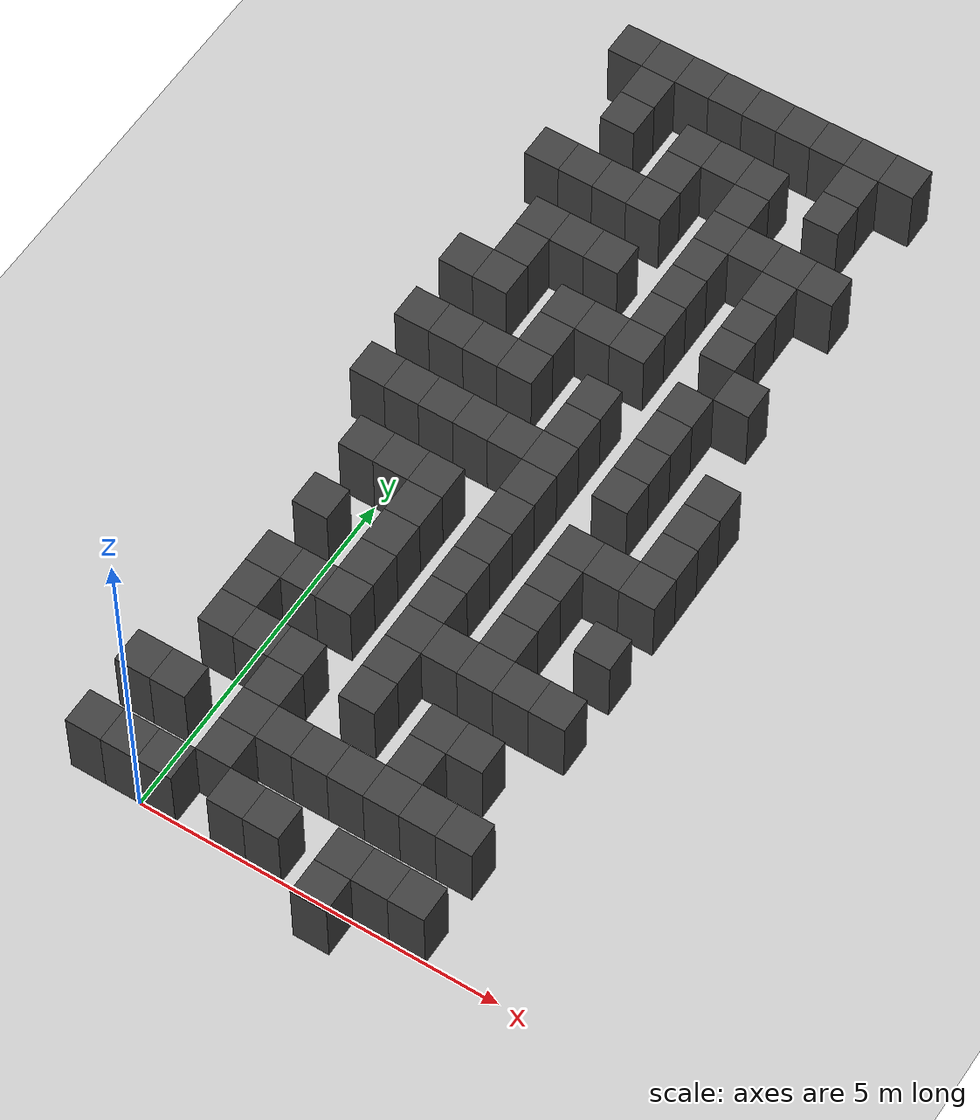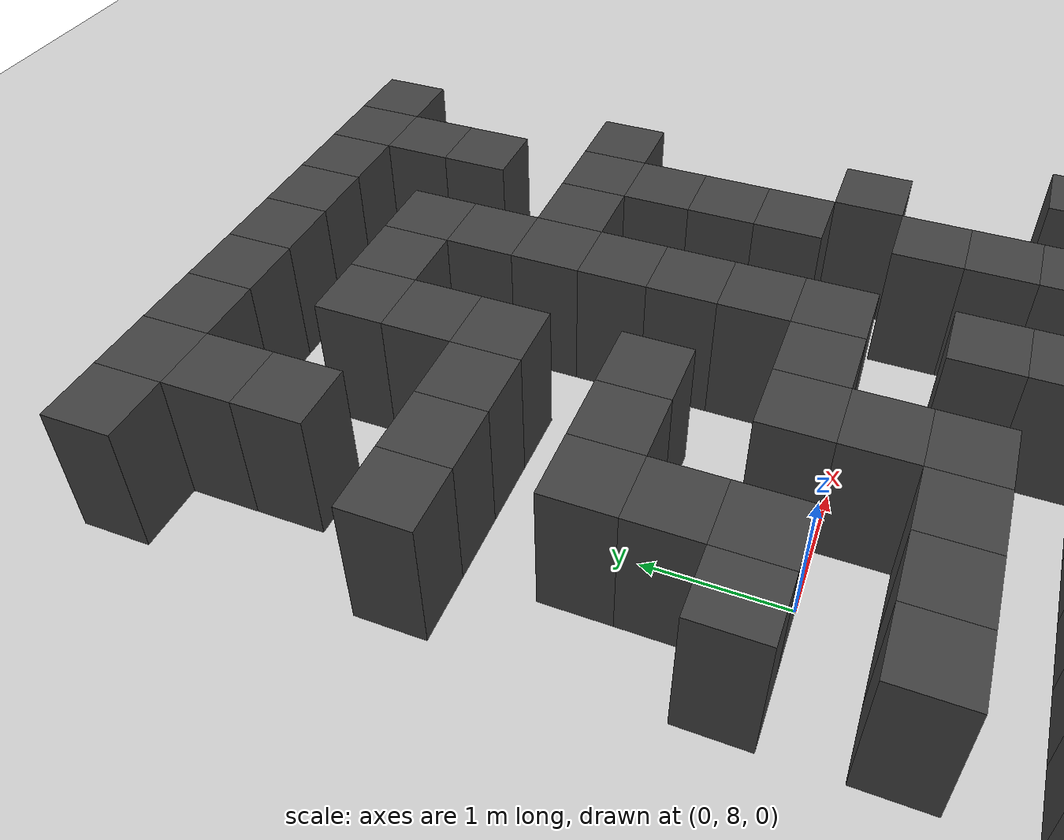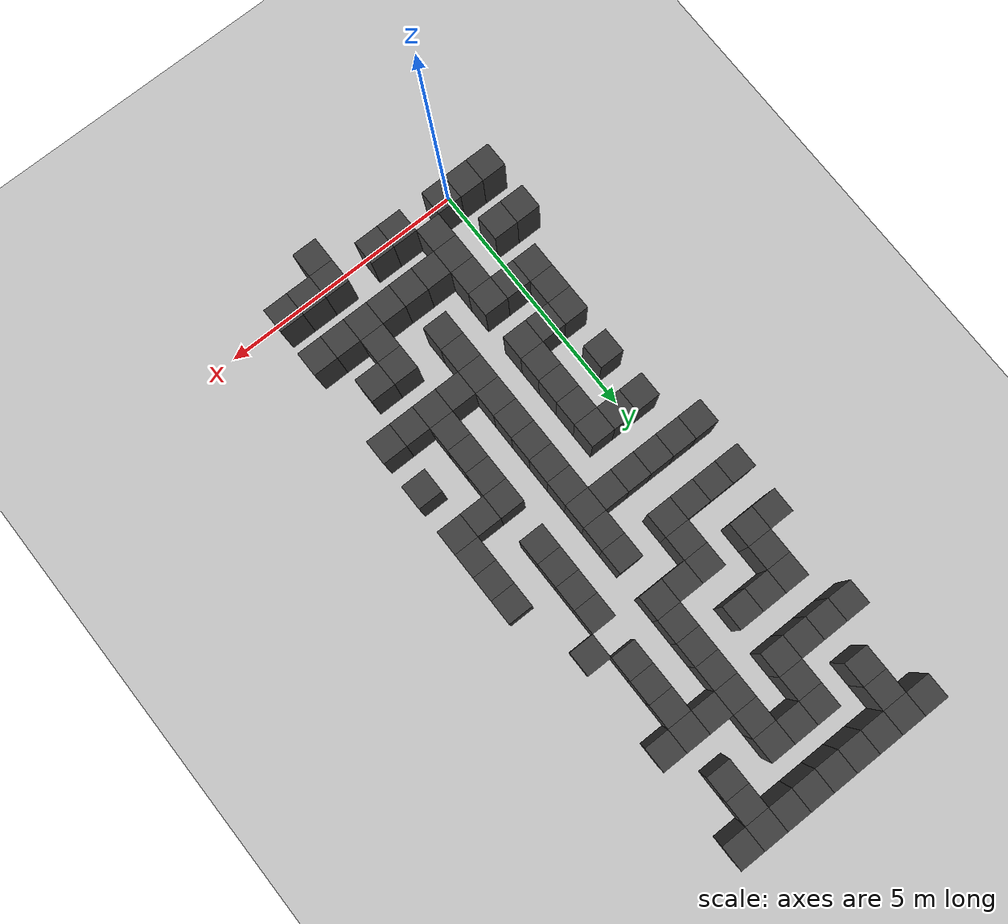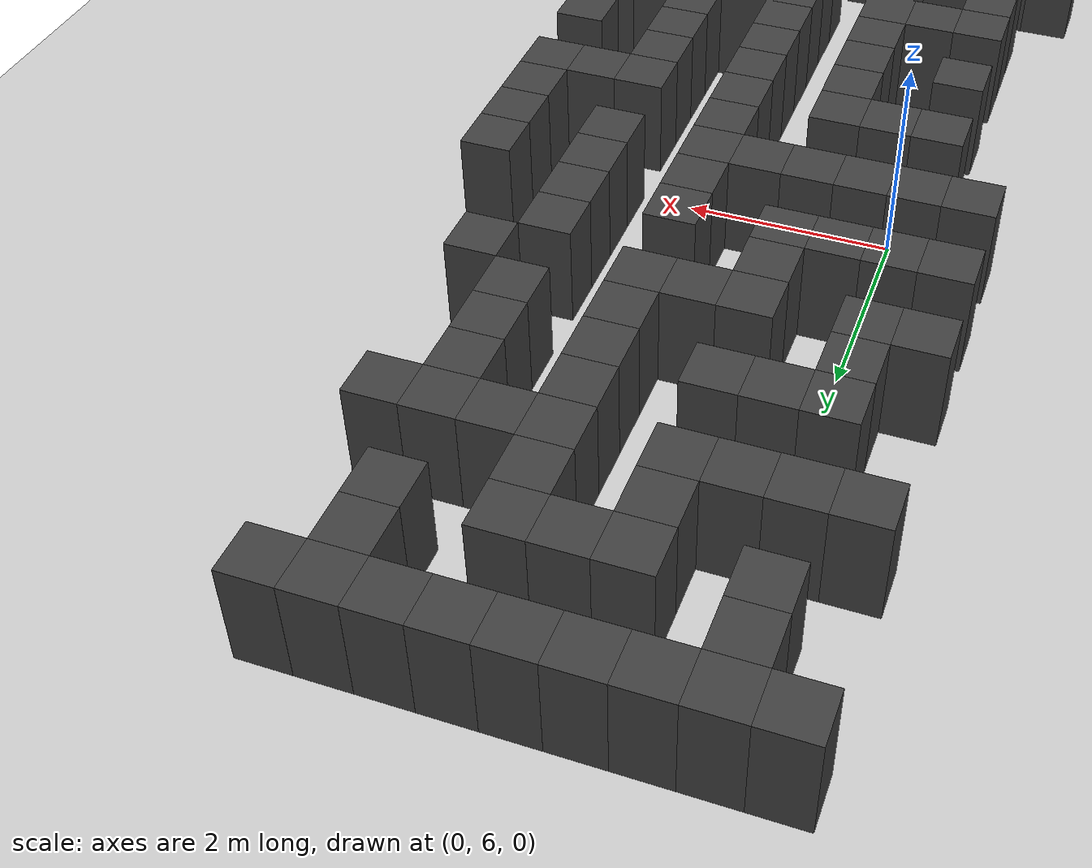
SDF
<sdf version="1.7">
 <world name="map_18313">
  <model name="ground_plane">
   <static>true</static>
   <link name="link">
    <collision name="collision">
     <geometry><plane><normal>0 0 1</normal><size>200 200</size></plane></geometry>
    </collision>
    <visual name="visual">
     <geometry><plane><normal>0 0 1</normal><size>200 200</size></plane></geometry>
     <material><ambient>0.8 0.8 0.8 1</ambient><diffuse>0.8 0.8 0.8 1</diffuse></material>
    </visual>
   </link>
  </model>
  <model name="maze_environment">
   <static>true</static>
   <link name="wall_23">
    <pose>-0.750 12.250 0.500 0 0 0</pose>
    <collision name="col"><geometry><box><size>0.5 0.5 1.0</size></box></geometry></collision>
    <visual name="vis">
     <geometry><box><size>0.5 0.5 1.0</size></box></geometry>
     <material><ambient>0.15 0.15 0.15 1</ambient><diffuse>0.25 0.25 0.25 1</diffuse></material>
    </visual>
   </link>
   <link name="wall_24">
    <pose>-0.250 12.250 0.500 0 0 0</pose>
    <collision name="col"><geometry><box><size>0.5 0.5 1.0</size></box></geometry></collision>
    <visual name="vis">
     <geometry><box><size>0.5 0.5 1.0</size></box></geometry>
     <material><ambient>0.15 0.15 0.15 1</ambient><diffuse>0.25 0.25 0.25 1</diffuse></material>
    </visual>
   </link>
   <link name="wall_25">
    <pose>0.250 12.250 0.500 0 0 0</pose>
    <collision name="col"><geometry><box><size>0.5 0.5 1.0</size></box></geometry></collision>
    <visual name="vis">
     <geometry><box><size>0.5 0.5 1.0</size></box></geometry>
     <material><ambient>0.15 0.15 0.15 1</ambient><diffuse>0.25 0.25 0.25 1</diffuse></material>
    </visual>
   </link>
   <link name="wall_26">
    <pose>0.750 12.250 0.500 0 0 0</pose>
    <collision name="col"><geometry><box><size>0.5 0.5 1.0</size></box></geometry></collision>
    <visual name="vis">
     <geometry><box><size>0.5 0.5 1.0</size></box></geometry>
     <material><ambient>0.15 0.15 0.15 1</ambient><diffuse>0.25 0.25 0.25 1</diffuse></material>
    </visual>
   </link>
   <link name="wall_27">
    <pose>1.250 12.250 0.500 0 0 0</pose>
    <collision name="col"><geometry><box><size>0.5 0.5 1.0</size></box></geometry></collision>
    <visual name="vis">
     <geometry><box><size>0.5 0.5 1.0</size></box></geometry>
     <material><ambient>0.15 0.15 0.15 1</ambient><diffuse>0.25 0.25 0.25 1</diffuse></material>
    </visual>
   </link>
   <link name="wall_28">
    <pose>1.750 12.250 0.500 0 0 0</pose>
    <collision name="col"><geometry><box><size>0.5 0.5 1.0</size></box></geometry></collision>
    <visual name="vis">
     <geometry><box><size>0.5 0.5 1.0</size></box></geometry>
     <material><ambient>0.15 0.15 0.15 1</ambient><diffuse>0.25 0.25 0.25 1</diffuse></material>
    </visual>
   </link>
   <link name="wall_29">
    <pose>2.250 12.250 0.500 0 0 0</pose>
    <collision name="col"><geometry><box><size>0.5 0.5 1.0</size></box></geometry></collision>
    <visual name="vis">
     <geometry><box><size>0.5 0.5 1.0</size></box></geometry>
     <material><ambient>0.15 0.15 0.15 1</ambient><diffuse>0.25 0.25 0.25 1</diffuse></material>
    </visual>
   </link>
   <link name="wall_30">
    <pose>2.750 12.250 0.500 0 0 0</pose>
    <collision name="col"><geometry><box><size>0.5 0.5 1.0</size></box></geometry></collision>
    <visual name="vis">
     <geometry><box><size>0.5 0.5 1.0</size></box></geometry>
     <material><ambient>0.15 0.15 0.15 1</ambient><diffuse>0.25 0.25 0.25 1</diffuse></material>
    </visual>
   </link>
   <link name="wall_31">
    <pose>3.250 12.250 0.500 0 0 0</pose>
    <collision name="col"><geometry><box><size>0.5 0.5 1.0</size></box></geometry></collision>
    <visual name="vis">
     <geometry><box><size>0.5 0.5 1.0</size></box></geometry>
     <material><ambient>0.15 0.15 0.15 1</ambient><diffuse>0.25 0.25 0.25 1</diffuse></material>
    </visual>
   </link>
   <link name="wall_54">
    <pose>-0.250 11.750 0.500 0 0 0</pose>
    <collision name="col"><geometry><box><size>0.5 0.5 1.0</size></box></geometry></collision>
    <visual name="vis">
     <geometry><box><size>0.5 0.5 1.0</size></box></geometry>
     <material><ambient>0.15 0.15 0.15 1</ambient><diffuse>0.25 0.25 0.25 1</diffuse></material>
    </visual>
   </link>
   <link name="wall_55">
    <pose>2.750 11.750 0.500 0 0 0</pose>
    <collision name="col"><geometry><box><size>0.5 0.5 1.0</size></box></geometry></collision>
    <visual name="vis">
     <geometry><box><size>0.5 0.5 1.0</size></box></geometry>
     <material><ambient>0.15 0.15 0.15 1</ambient><diffuse>0.25 0.25 0.25 1</diffuse></material>
    </visual>
   </link>
   <link name="wall_76">
    <pose>-0.250 11.250 0.500 0 0 0</pose>
    <collision name="col"><geometry><box><size>0.5 0.5 1.0</size></box></geometry></collision>
    <visual name="vis">
     <geometry><box><size>0.5 0.5 1.0</size></box></geometry>
     <material><ambient>0.15 0.15 0.15 1</ambient><diffuse>0.25 0.25 0.25 1</diffuse></material>
    </visual>
   </link>
   <link name="wall_77">
    <pose>0.750 11.250 0.500 0 0 0</pose>
    <collision name="col"><geometry><box><size>0.5 0.5 1.0</size></box></geometry></collision>
    <visual name="vis">
     <geometry><box><size>0.5 0.5 1.0</size></box></geometry>
     <material><ambient>0.15 0.15 0.15 1</ambient><diffuse>0.25 0.25 0.25 1</diffuse></material>
    </visual>
   </link>
   <link name="wall_78">
    <pose>1.250 11.250 0.500 0 0 0</pose>
    <collision name="col"><geometry><box><size>0.5 0.5 1.0</size></box></geometry></collision>
    <visual name="vis">
     <geometry><box><size>0.5 0.5 1.0</size></box></geometry>
     <material><ambient>0.15 0.15 0.15 1</ambient><diffuse>0.25 0.25 0.25 1</diffuse></material>
    </visual>
   </link>
   <link name="wall_79">
    <pose>1.750 11.250 0.500 0 0 0</pose>
    <collision name="col"><geometry><box><size>0.5 0.5 1.0</size></box></geometry></collision>
    <visual name="vis">
     <geometry><box><size>0.5 0.5 1.0</size></box></geometry>
     <material><ambient>0.15 0.15 0.15 1</ambient><diffuse>0.25 0.25 0.25 1</diffuse></material>
    </visual>
   </link>
   <link name="wall_80">
    <pose>2.750 11.250 0.500 0 0 0</pose>
    <collision name="col"><geometry><box><size>0.5 0.5 1.0</size></box></geometry></collision>
    <visual name="vis">
     <geometry><box><size>0.5 0.5 1.0</size></box></geometry>
     <material><ambient>0.15 0.15 0.15 1</ambient><diffuse>0.25 0.25 0.25 1</diffuse></material>
    </visual>
   </link>
   <link name="wall_100">
    <pose>0.750 10.750 0.500 0 0 0</pose>
    <collision name="col"><geometry><box><size>0.5 0.5 1.0</size></box></geometry></collision>
    <visual name="vis">
     <geometry><box><size>0.5 0.5 1.0</size></box></geometry>
     <material><ambient>0.15 0.15 0.15 1</ambient><diffuse>0.25 0.25 0.25 1</diffuse></material>
    </visual>
   </link>
   <link name="wall_101">
    <pose>1.750 10.750 0.500 0 0 0</pose>
    <collision name="col"><geometry><box><size>0.5 0.5 1.0</size></box></geometry></collision>
    <visual name="vis">
     <geometry><box><size>0.5 0.5 1.0</size></box></geometry>
     <material><ambient>0.15 0.15 0.15 1</ambient><diffuse>0.25 0.25 0.25 1</diffuse></material>
    </visual>
   </link>
   <link name="wall_124">
    <pose>-0.750 10.250 0.500 0 0 0</pose>
    <collision name="col"><geometry><box><size>0.5 0.5 1.0</size></box></geometry></collision>
    <visual name="vis">
     <geometry><box><size>0.5 0.5 1.0</size></box></geometry>
     <material><ambient>0.15 0.15 0.15 1</ambient><diffuse>0.25 0.25 0.25 1</diffuse></material>
    </visual>
   </link>
   <link name="wall_125">
    <pose>-0.250 10.250 0.500 0 0 0</pose>
    <collision name="col"><geometry><box><size>0.5 0.5 1.0</size></box></geometry></collision>
    <visual name="vis">
     <geometry><box><size>0.5 0.5 1.0</size></box></geometry>
     <material><ambient>0.15 0.15 0.15 1</ambient><diffuse>0.25 0.25 0.25 1</diffuse></material>
    </visual>
   </link>
   <link name="wall_126">
    <pose>0.250 10.250 0.500 0 0 0</pose>
    <collision name="col"><geometry><box><size>0.5 0.5 1.0</size></box></geometry></collision>
    <visual name="vis">
     <geometry><box><size>0.5 0.5 1.0</size></box></geometry>
     <material><ambient>0.15 0.15 0.15 1</ambient><diffuse>0.25 0.25 0.25 1</diffuse></material>
    </visual>
   </link>
   <link name="wall_127">
    <pose>0.750 10.250 0.500 0 0 0</pose>
    <collision name="col"><geometry><box><size>0.5 0.5 1.0</size></box></geometry></collision>
    <visual name="vis">
     <geometry><box><size>0.5 0.5 1.0</size></box></geometry>
     <material><ambient>0.15 0.15 0.15 1</ambient><diffuse>0.25 0.25 0.25 1</diffuse></material>
    </visual>
   </link>
   <link name="wall_128">
    <pose>1.750 10.250 0.500 0 0 0</pose>
    <collision name="col"><geometry><box><size>0.5 0.5 1.0</size></box></geometry></collision>
    <visual name="vis">
     <geometry><box><size>0.5 0.5 1.0</size></box></geometry>
     <material><ambient>0.15 0.15 0.15 1</ambient><diffuse>0.25 0.25 0.25 1</diffuse></material>
    </visual>
   </link>
   <link name="wall_129">
    <pose>2.250 10.250 0.500 0 0 0</pose>
    <collision name="col"><geometry><box><size>0.5 0.5 1.0</size></box></geometry></collision>
    <visual name="vis">
     <geometry><box><size>0.5 0.5 1.0</size></box></geometry>
     <material><ambient>0.15 0.15 0.15 1</ambient><diffuse>0.25 0.25 0.25 1</diffuse></material>
    </visual>
   </link>
   <link name="wall_130">
    <pose>2.750 10.250 0.500 0 0 0</pose>
    <collision name="col"><geometry><box><size>0.5 0.5 1.0</size></box></geometry></collision>
    <visual name="vis">
     <geometry><box><size>0.5 0.5 1.0</size></box></geometry>
     <material><ambient>0.15 0.15 0.15 1</ambient><diffuse>0.25 0.25 0.25 1</diffuse></material>
    </visual>
   </link>
   <link name="wall_131">
    <pose>3.250 10.250 0.500 0 0 0</pose>
    <collision name="col"><geometry><box><size>0.5 0.5 1.0</size></box></geometry></collision>
    <visual name="vis">
     <geometry><box><size>0.5 0.5 1.0</size></box></geometry>
     <material><ambient>0.15 0.15 0.15 1</ambient><diffuse>0.25 0.25 0.25 1</diffuse></material>
    </visual>
   </link>
   <link name="wall_155">
    <pose>1.750 9.750 0.500 0 0 0</pose>
    <collision name="col"><geometry><box><size>0.5 0.5 1.0</size></box></geometry></collision>
    <visual name="vis">
     <geometry><box><size>0.5 0.5 1.0</size></box></geometry>
     <material><ambient>0.15 0.15 0.15 1</ambient><diffuse>0.25 0.25 0.25 1</diffuse></material>
    </visual>
   </link>
   <link name="wall_156">
    <pose>2.750 9.750 0.500 0 0 0</pose>
    <collision name="col"><geometry><box><size>0.5 0.5 1.0</size></box></geometry></collision>
    <visual name="vis">
     <geometry><box><size>0.5 0.5 1.0</size></box></geometry>
     <material><ambient>0.15 0.15 0.15 1</ambient><diffuse>0.25 0.25 0.25 1</diffuse></material>
    </visual>
   </link>
   <link name="wall_175">
    <pose>-0.250 9.250 0.500 0 0 0</pose>
    <collision name="col"><geometry><box><size>0.5 0.5 1.0</size></box></geometry></collision>
    <visual name="vis">
     <geometry><box><size>0.5 0.5 1.0</size></box></geometry>
     <material><ambient>0.15 0.15 0.15 1</ambient><diffuse>0.25 0.25 0.25 1</diffuse></material>
    </visual>
   </link>
   <link name="wall_176">
    <pose>0.250 9.250 0.500 0 0 0</pose>
    <collision name="col"><geometry><box><size>0.5 0.5 1.0</size></box></geometry></collision>
    <visual name="vis">
     <geometry><box><size>0.5 0.5 1.0</size></box></geometry>
     <material><ambient>0.15 0.15 0.15 1</ambient><diffuse>0.25 0.25 0.25 1</diffuse></material>
    </visual>
   </link>
   <link name="wall_177">
    <pose>0.750 9.250 0.500 0 0 0</pose>
    <collision name="col"><geometry><box><size>0.5 0.5 1.0</size></box></geometry></collision>
    <visual name="vis">
     <geometry><box><size>0.5 0.5 1.0</size></box></geometry>
     <material><ambient>0.15 0.15 0.15 1</ambient><diffuse>0.25 0.25 0.25 1</diffuse></material>
    </visual>
   </link>
   <link name="wall_178">
    <pose>1.750 9.250 0.500 0 0 0</pose>
    <collision name="col"><geometry><box><size>0.5 0.5 1.0</size></box></geometry></collision>
    <visual name="vis">
     <geometry><box><size>0.5 0.5 1.0</size></box></geometry>
     <material><ambient>0.15 0.15 0.15 1</ambient><diffuse>0.25 0.25 0.25 1</diffuse></material>
    </visual>
   </link>
   <link name="wall_179">
    <pose>2.750 9.250 0.500 0 0 0</pose>
    <collision name="col"><geometry><box><size>0.5 0.5 1.0</size></box></geometry></collision>
    <visual name="vis">
     <geometry><box><size>0.5 0.5 1.0</size></box></geometry>
     <material><ambient>0.15 0.15 0.15 1</ambient><diffuse>0.25 0.25 0.25 1</diffuse></material>
    </visual>
   </link>
   <link name="wall_201">
    <pose>-0.250 8.750 0.500 0 0 0</pose>
    <collision name="col"><geometry><box><size>0.5 0.5 1.0</size></box></geometry></collision>
    <visual name="vis">
     <geometry><box><size>0.5 0.5 1.0</size></box></geometry>
     <material><ambient>0.15 0.15 0.15 1</ambient><diffuse>0.25 0.25 0.25 1</diffuse></material>
    </visual>
   </link>
   <link name="wall_202">
    <pose>1.750 8.750 0.500 0 0 0</pose>
    <collision name="col"><geometry><box><size>0.5 0.5 1.0</size></box></geometry></collision>
    <visual name="vis">
     <geometry><box><size>0.5 0.5 1.0</size></box></geometry>
     <material><ambient>0.15 0.15 0.15 1</ambient><diffuse>0.25 0.25 0.25 1</diffuse></material>
    </visual>
   </link>
   <link name="wall_203">
    <pose>2.750 8.750 0.500 0 0 0</pose>
    <collision name="col"><geometry><box><size>0.5 0.5 1.0</size></box></geometry></collision>
    <visual name="vis">
     <geometry><box><size>0.5 0.5 1.0</size></box></geometry>
     <material><ambient>0.15 0.15 0.15 1</ambient><diffuse>0.25 0.25 0.25 1</diffuse></material>
    </visual>
   </link>
   <link name="wall_227">
    <pose>-0.750 8.250 0.500 0 0 0</pose>
    <collision name="col"><geometry><box><size>0.5 0.5 1.0</size></box></geometry></collision>
    <visual name="vis">
     <geometry><box><size>0.5 0.5 1.0</size></box></geometry>
     <material><ambient>0.15 0.15 0.15 1</ambient><diffuse>0.25 0.25 0.25 1</diffuse></material>
    </visual>
   </link>
   <link name="wall_228">
    <pose>-0.250 8.250 0.500 0 0 0</pose>
    <collision name="col"><geometry><box><size>0.5 0.5 1.0</size></box></geometry></collision>
    <visual name="vis">
     <geometry><box><size>0.5 0.5 1.0</size></box></geometry>
     <material><ambient>0.15 0.15 0.15 1</ambient><diffuse>0.25 0.25 0.25 1</diffuse></material>
    </visual>
   </link>
   <link name="wall_229">
    <pose>0.750 8.250 0.500 0 0 0</pose>
    <collision name="col"><geometry><box><size>0.5 0.5 1.0</size></box></geometry></collision>
    <visual name="vis">
     <geometry><box><size>0.5 0.5 1.0</size></box></geometry>
     <material><ambient>0.15 0.15 0.15 1</ambient><diffuse>0.25 0.25 0.25 1</diffuse></material>
    </visual>
   </link>
   <link name="wall_230">
    <pose>1.250 8.250 0.500 0 0 0</pose>
    <collision name="col"><geometry><box><size>0.5 0.5 1.0</size></box></geometry></collision>
    <visual name="vis">
     <geometry><box><size>0.5 0.5 1.0</size></box></geometry>
     <material><ambient>0.15 0.15 0.15 1</ambient><diffuse>0.25 0.25 0.25 1</diffuse></material>
    </visual>
   </link>
   <link name="wall_231">
    <pose>1.750 8.250 0.500 0 0 0</pose>
    <collision name="col"><geometry><box><size>0.5 0.5 1.0</size></box></geometry></collision>
    <visual name="vis">
     <geometry><box><size>0.5 0.5 1.0</size></box></geometry>
     <material><ambient>0.15 0.15 0.15 1</ambient><diffuse>0.25 0.25 0.25 1</diffuse></material>
    </visual>
   </link>
   <link name="wall_232">
    <pose>3.250 8.250 0.500 0 0 0</pose>
    <collision name="col"><geometry><box><size>0.5 0.5 1.0</size></box></geometry></collision>
    <visual name="vis">
     <geometry><box><size>0.5 0.5 1.0</size></box></geometry>
     <material><ambient>0.15 0.15 0.15 1</ambient><diffuse>0.25 0.25 0.25 1</diffuse></material>
    </visual>
   </link>
   <link name="wall_250">
    <pose>0.750 7.750 0.500 0 0 0</pose>
    <collision name="col"><geometry><box><size>0.5 0.5 1.0</size></box></geometry></collision>
    <visual name="vis">
     <geometry><box><size>0.5 0.5 1.0</size></box></geometry>
     <material><ambient>0.15 0.15 0.15 1</ambient><diffuse>0.25 0.25 0.25 1</diffuse></material>
    </visual>
   </link>
   <link name="wall_251">
    <pose>2.750 7.750 0.500 0 0 0</pose>
    <collision name="col"><geometry><box><size>0.5 0.5 1.0</size></box></geometry></collision>
    <visual name="vis">
     <geometry><box><size>0.5 0.5 1.0</size></box></geometry>
     <material><ambient>0.15 0.15 0.15 1</ambient><diffuse>0.25 0.25 0.25 1</diffuse></material>
    </visual>
   </link>
   <link name="wall_275">
    <pose>-0.750 7.250 0.500 0 0 0</pose>
    <collision name="col"><geometry><box><size>0.5 0.5 1.0</size></box></geometry></collision>
    <visual name="vis">
     <geometry><box><size>0.5 0.5 1.0</size></box></geometry>
     <material><ambient>0.15 0.15 0.15 1</ambient><diffuse>0.25 0.25 0.25 1</diffuse></material>
    </visual>
   </link>
   <link name="wall_276">
    <pose>-0.250 7.250 0.500 0 0 0</pose>
    <collision name="col"><geometry><box><size>0.5 0.5 1.0</size></box></geometry></collision>
    <visual name="vis">
     <geometry><box><size>0.5 0.5 1.0</size></box></geometry>
     <material><ambient>0.15 0.15 0.15 1</ambient><diffuse>0.25 0.25 0.25 1</diffuse></material>
    </visual>
   </link>
   <link name="wall_277">
    <pose>0.250 7.250 0.500 0 0 0</pose>
    <collision name="col"><geometry><box><size>0.5 0.5 1.0</size></box></geometry></collision>
    <visual name="vis">
     <geometry><box><size>0.5 0.5 1.0</size></box></geometry>
     <material><ambient>0.15 0.15 0.15 1</ambient><diffuse>0.25 0.25 0.25 1</diffuse></material>
    </visual>
   </link>
   <link name="wall_278">
    <pose>0.750 7.250 0.500 0 0 0</pose>
    <collision name="col"><geometry><box><size>0.5 0.5 1.0</size></box></geometry></collision>
    <visual name="vis">
     <geometry><box><size>0.5 0.5 1.0</size></box></geometry>
     <material><ambient>0.15 0.15 0.15 1</ambient><diffuse>0.25 0.25 0.25 1</diffuse></material>
    </visual>
   </link>
   <link name="wall_279">
    <pose>1.750 7.250 0.500 0 0 0</pose>
    <collision name="col"><geometry><box><size>0.5 0.5 1.0</size></box></geometry></collision>
    <visual name="vis">
     <geometry><box><size>0.5 0.5 1.0</size></box></geometry>
     <material><ambient>0.15 0.15 0.15 1</ambient><diffuse>0.25 0.25 0.25 1</diffuse></material>
    </visual>
   </link>
   <link name="wall_280">
    <pose>2.750 7.250 0.500 0 0 0</pose>
    <collision name="col"><geometry><box><size>0.5 0.5 1.0</size></box></geometry></collision>
    <visual name="vis">
     <geometry><box><size>0.5 0.5 1.0</size></box></geometry>
     <material><ambient>0.15 0.15 0.15 1</ambient><diffuse>0.25 0.25 0.25 1</diffuse></material>
    </visual>
   </link>
   <link name="wall_302">
    <pose>1.750 6.750 0.500 0 0 0</pose>
    <collision name="col"><geometry><box><size>0.5 0.5 1.0</size></box></geometry></collision>
    <visual name="vis">
     <geometry><box><size>0.5 0.5 1.0</size></box></geometry>
     <material><ambient>0.15 0.15 0.15 1</ambient><diffuse>0.25 0.25 0.25 1</diffuse></material>
    </visual>
   </link>
   <link name="wall_303">
    <pose>2.750 6.750 0.500 0 0 0</pose>
    <collision name="col"><geometry><box><size>0.5 0.5 1.0</size></box></geometry></collision>
    <visual name="vis">
     <geometry><box><size>0.5 0.5 1.0</size></box></geometry>
     <material><ambient>0.15 0.15 0.15 1</ambient><diffuse>0.25 0.25 0.25 1</diffuse></material>
    </visual>
   </link>
   <link name="wall_304">
    <pose>3.750 6.750 0.500 0 0 0</pose>
    <collision name="col"><geometry><box><size>0.5 0.5 1.0</size></box></geometry></collision>
    <visual name="vis">
     <geometry><box><size>0.5 0.5 1.0</size></box></geometry>
     <material><ambient>0.15 0.15 0.15 1</ambient><diffuse>0.25 0.25 0.25 1</diffuse></material>
    </visual>
   </link>
   <link name="wall_327">
    <pose>-0.750 6.250 0.500 0 0 0</pose>
    <collision name="col"><geometry><box><size>0.5 0.5 1.0</size></box></geometry></collision>
    <visual name="vis">
     <geometry><box><size>0.5 0.5 1.0</size></box></geometry>
     <material><ambient>0.15 0.15 0.15 1</ambient><diffuse>0.25 0.25 0.25 1</diffuse></material>
    </visual>
   </link>
   <link name="wall_328">
    <pose>-0.250 6.250 0.500 0 0 0</pose>
    <collision name="col"><geometry><box><size>0.5 0.5 1.0</size></box></geometry></collision>
    <visual name="vis">
     <geometry><box><size>0.5 0.5 1.0</size></box></geometry>
     <material><ambient>0.15 0.15 0.15 1</ambient><diffuse>0.25 0.25 0.25 1</diffuse></material>
    </visual>
   </link>
   <link name="wall_329">
    <pose>0.250 6.250 0.500 0 0 0</pose>
    <collision name="col"><geometry><box><size>0.5 0.5 1.0</size></box></geometry></collision>
    <visual name="vis">
     <geometry><box><size>0.5 0.5 1.0</size></box></geometry>
     <material><ambient>0.15 0.15 0.15 1</ambient><diffuse>0.25 0.25 0.25 1</diffuse></material>
    </visual>
   </link>
   <link name="wall_330">
    <pose>0.750 6.250 0.500 0 0 0</pose>
    <collision name="col"><geometry><box><size>0.5 0.5 1.0</size></box></geometry></collision>
    <visual name="vis">
     <geometry><box><size>0.5 0.5 1.0</size></box></geometry>
     <material><ambient>0.15 0.15 0.15 1</ambient><diffuse>0.25 0.25 0.25 1</diffuse></material>
    </visual>
   </link>
   <link name="wall_331">
    <pose>1.250 6.250 0.500 0 0 0</pose>
    <collision name="col"><geometry><box><size>0.5 0.5 1.0</size></box></geometry></collision>
    <visual name="vis">
     <geometry><box><size>0.5 0.5 1.0</size></box></geometry>
     <material><ambient>0.15 0.15 0.15 1</ambient><diffuse>0.25 0.25 0.25 1</diffuse></material>
    </visual>
   </link>
   <link name="wall_332">
    <pose>1.750 6.250 0.500 0 0 0</pose>
    <collision name="col"><geometry><box><size>0.5 0.5 1.0</size></box></geometry></collision>
    <visual name="vis">
     <geometry><box><size>0.5 0.5 1.0</size></box></geometry>
     <material><ambient>0.15 0.15 0.15 1</ambient><diffuse>0.25 0.25 0.25 1</diffuse></material>
    </visual>
   </link>
   <link name="wall_333">
    <pose>2.750 6.250 0.500 0 0 0</pose>
    <collision name="col"><geometry><box><size>0.5 0.5 1.0</size></box></geometry></collision>
    <visual name="vis">
     <geometry><box><size>0.5 0.5 1.0</size></box></geometry>
     <material><ambient>0.15 0.15 0.15 1</ambient><diffuse>0.25 0.25 0.25 1</diffuse></material>
    </visual>
   </link>
   <link name="wall_334">
    <pose>3.750 6.250 0.500 0 0 0</pose>
    <collision name="col"><geometry><box><size>0.5 0.5 1.0</size></box></geometry></collision>
    <visual name="vis">
     <geometry><box><size>0.5 0.5 1.0</size></box></geometry>
     <material><ambient>0.15 0.15 0.15 1</ambient><diffuse>0.25 0.25 0.25 1</diffuse></material>
    </visual>
   </link>
   <link name="wall_351">
    <pose>1.750 5.750 0.500 0 0 0</pose>
    <collision name="col"><geometry><box><size>0.5 0.5 1.0</size></box></geometry></collision>
    <visual name="vis">
     <geometry><box><size>0.5 0.5 1.0</size></box></geometry>
     <material><ambient>0.15 0.15 0.15 1</ambient><diffuse>0.25 0.25 0.25 1</diffuse></material>
    </visual>
   </link>
   <link name="wall_352">
    <pose>3.750 5.750 0.500 0 0 0</pose>
    <collision name="col"><geometry><box><size>0.5 0.5 1.0</size></box></geometry></collision>
    <visual name="vis">
     <geometry><box><size>0.5 0.5 1.0</size></box></geometry>
     <material><ambient>0.15 0.15 0.15 1</ambient><diffuse>0.25 0.25 0.25 1</diffuse></material>
    </visual>
   </link>
   <link name="wall_378">
    <pose>-0.250 5.250 0.500 0 0 0</pose>
    <collision name="col"><geometry><box><size>0.5 0.5 1.0</size></box></geometry></collision>
    <visual name="vis">
     <geometry><box><size>0.5 0.5 1.0</size></box></geometry>
     <material><ambient>0.15 0.15 0.15 1</ambient><diffuse>0.25 0.25 0.25 1</diffuse></material>
    </visual>
   </link>
   <link name="wall_379">
    <pose>0.250 5.250 0.500 0 0 0</pose>
    <collision name="col"><geometry><box><size>0.5 0.5 1.0</size></box></geometry></collision>
    <visual name="vis">
     <geometry><box><size>0.5 0.5 1.0</size></box></geometry>
     <material><ambient>0.15 0.15 0.15 1</ambient><diffuse>0.25 0.25 0.25 1</diffuse></material>
    </visual>
   </link>
   <link name="wall_380">
    <pose>0.750 5.250 0.500 0 0 0</pose>
    <collision name="col"><geometry><box><size>0.5 0.5 1.0</size></box></geometry></collision>
    <visual name="vis">
     <geometry><box><size>0.5 0.5 1.0</size></box></geometry>
     <material><ambient>0.15 0.15 0.15 1</ambient><diffuse>0.25 0.25 0.25 1</diffuse></material>
    </visual>
   </link>
   <link name="wall_381">
    <pose>1.750 5.250 0.500 0 0 0</pose>
    <collision name="col"><geometry><box><size>0.5 0.5 1.0</size></box></geometry></collision>
    <visual name="vis">
     <geometry><box><size>0.5 0.5 1.0</size></box></geometry>
     <material><ambient>0.15 0.15 0.15 1</ambient><diffuse>0.25 0.25 0.25 1</diffuse></material>
    </visual>
   </link>
   <link name="wall_382">
    <pose>2.750 5.250 0.500 0 0 0</pose>
    <collision name="col"><geometry><box><size>0.5 0.5 1.0</size></box></geometry></collision>
    <visual name="vis">
     <geometry><box><size>0.5 0.5 1.0</size></box></geometry>
     <material><ambient>0.15 0.15 0.15 1</ambient><diffuse>0.25 0.25 0.25 1</diffuse></material>
    </visual>
   </link>
   <link name="wall_383">
    <pose>3.250 5.250 0.500 0 0 0</pose>
    <collision name="col"><geometry><box><size>0.5 0.5 1.0</size></box></geometry></collision>
    <visual name="vis">
     <geometry><box><size>0.5 0.5 1.0</size></box></geometry>
     <material><ambient>0.15 0.15 0.15 1</ambient><diffuse>0.25 0.25 0.25 1</diffuse></material>
    </visual>
   </link>
   <link name="wall_384">
    <pose>3.750 5.250 0.500 0 0 0</pose>
    <collision name="col"><geometry><box><size>0.5 0.5 1.0</size></box></geometry></collision>
    <visual name="vis">
     <geometry><box><size>0.5 0.5 1.0</size></box></geometry>
     <material><ambient>0.15 0.15 0.15 1</ambient><diffuse>0.25 0.25 0.25 1</diffuse></material>
    </visual>
   </link>
   <link name="wall_402">
    <pose>0.750 4.750 0.500 0 0 0</pose>
    <collision name="col"><geometry><box><size>0.5 0.5 1.0</size></box></geometry></collision>
    <visual name="vis">
     <geometry><box><size>0.5 0.5 1.0</size></box></geometry>
     <material><ambient>0.15 0.15 0.15 1</ambient><diffuse>0.25 0.25 0.25 1</diffuse></material>
    </visual>
   </link>
   <link name="wall_403">
    <pose>1.750 4.750 0.500 0 0 0</pose>
    <collision name="col"><geometry><box><size>0.5 0.5 1.0</size></box></geometry></collision>
    <visual name="vis">
     <geometry><box><size>0.5 0.5 1.0</size></box></geometry>
     <material><ambient>0.15 0.15 0.15 1</ambient><diffuse>0.25 0.25 0.25 1</diffuse></material>
    </visual>
   </link>
   <link name="wall_404">
    <pose>2.750 4.750 0.500 0 0 0</pose>
    <collision name="col"><geometry><box><size>0.5 0.5 1.0</size></box></geometry></collision>
    <visual name="vis">
     <geometry><box><size>0.5 0.5 1.0</size></box></geometry>
     <material><ambient>0.15 0.15 0.15 1</ambient><diffuse>0.25 0.25 0.25 1</diffuse></material>
    </visual>
   </link>
   <link name="wall_426">
    <pose>-0.250 4.250 0.500 0 0 0</pose>
    <collision name="col"><geometry><box><size>0.5 0.5 1.0</size></box></geometry></collision>
    <visual name="vis">
     <geometry><box><size>0.5 0.5 1.0</size></box></geometry>
     <material><ambient>0.15 0.15 0.15 1</ambient><diffuse>0.25 0.25 0.25 1</diffuse></material>
    </visual>
   </link>
   <link name="wall_427">
    <pose>0.750 4.250 0.500 0 0 0</pose>
    <collision name="col"><geometry><box><size>0.5 0.5 1.0</size></box></geometry></collision>
    <visual name="vis">
     <geometry><box><size>0.5 0.5 1.0</size></box></geometry>
     <material><ambient>0.15 0.15 0.15 1</ambient><diffuse>0.25 0.25 0.25 1</diffuse></material>
    </visual>
   </link>
   <link name="wall_428">
    <pose>1.750 4.250 0.500 0 0 0</pose>
    <collision name="col"><geometry><box><size>0.5 0.5 1.0</size></box></geometry></collision>
    <visual name="vis">
     <geometry><box><size>0.5 0.5 1.0</size></box></geometry>
     <material><ambient>0.15 0.15 0.15 1</ambient><diffuse>0.25 0.25 0.25 1</diffuse></material>
    </visual>
   </link>
   <link name="wall_429">
    <pose>2.750 4.250 0.500 0 0 0</pose>
    <collision name="col"><geometry><box><size>0.5 0.5 1.0</size></box></geometry></collision>
    <visual name="vis">
     <geometry><box><size>0.5 0.5 1.0</size></box></geometry>
     <material><ambient>0.15 0.15 0.15 1</ambient><diffuse>0.25 0.25 0.25 1</diffuse></material>
    </visual>
   </link>
   <link name="wall_430">
    <pose>3.750 4.250 0.500 0 0 0</pose>
    <collision name="col"><geometry><box><size>0.5 0.5 1.0</size></box></geometry></collision>
    <visual name="vis">
     <geometry><box><size>0.5 0.5 1.0</size></box></geometry>
     <material><ambient>0.15 0.15 0.15 1</ambient><diffuse>0.25 0.25 0.25 1</diffuse></material>
    </visual>
   </link>
   <link name="wall_453">
    <pose>0.750 3.750 0.500 0 0 0</pose>
    <collision name="col"><geometry><box><size>0.5 0.5 1.0</size></box></geometry></collision>
    <visual name="vis">
     <geometry><box><size>0.5 0.5 1.0</size></box></geometry>
     <material><ambient>0.15 0.15 0.15 1</ambient><diffuse>0.25 0.25 0.25 1</diffuse></material>
    </visual>
   </link>
   <link name="wall_454">
    <pose>1.750 3.750 0.500 0 0 0</pose>
    <collision name="col"><geometry><box><size>0.5 0.5 1.0</size></box></geometry></collision>
    <visual name="vis">
     <geometry><box><size>0.5 0.5 1.0</size></box></geometry>
     <material><ambient>0.15 0.15 0.15 1</ambient><diffuse>0.25 0.25 0.25 1</diffuse></material>
    </visual>
   </link>
   <link name="wall_455">
    <pose>2.750 3.750 0.500 0 0 0</pose>
    <collision name="col"><geometry><box><size>0.5 0.5 1.0</size></box></geometry></collision>
    <visual name="vis">
     <geometry><box><size>0.5 0.5 1.0</size></box></geometry>
     <material><ambient>0.15 0.15 0.15 1</ambient><diffuse>0.25 0.25 0.25 1</diffuse></material>
    </visual>
   </link>
   <link name="wall_476">
    <pose>-0.250 3.250 0.500 0 0 0</pose>
    <collision name="col"><geometry><box><size>0.5 0.5 1.0</size></box></geometry></collision>
    <visual name="vis">
     <geometry><box><size>0.5 0.5 1.0</size></box></geometry>
     <material><ambient>0.15 0.15 0.15 1</ambient><diffuse>0.25 0.25 0.25 1</diffuse></material>
    </visual>
   </link>
   <link name="wall_477">
    <pose>0.250 3.250 0.500 0 0 0</pose>
    <collision name="col"><geometry><box><size>0.5 0.5 1.0</size></box></geometry></collision>
    <visual name="vis">
     <geometry><box><size>0.5 0.5 1.0</size></box></geometry>
     <material><ambient>0.15 0.15 0.15 1</ambient><diffuse>0.25 0.25 0.25 1</diffuse></material>
    </visual>
   </link>
   <link name="wall_478">
    <pose>0.750 3.250 0.500 0 0 0</pose>
    <collision name="col"><geometry><box><size>0.5 0.5 1.0</size></box></geometry></collision>
    <visual name="vis">
     <geometry><box><size>0.5 0.5 1.0</size></box></geometry>
     <material><ambient>0.15 0.15 0.15 1</ambient><diffuse>0.25 0.25 0.25 1</diffuse></material>
    </visual>
   </link>
   <link name="wall_479">
    <pose>1.750 3.250 0.500 0 0 0</pose>
    <collision name="col"><geometry><box><size>0.5 0.5 1.0</size></box></geometry></collision>
    <visual name="vis">
     <geometry><box><size>0.5 0.5 1.0</size></box></geometry>
     <material><ambient>0.15 0.15 0.15 1</ambient><diffuse>0.25 0.25 0.25 1</diffuse></material>
    </visual>
   </link>
   <link name="wall_480">
    <pose>2.250 3.250 0.500 0 0 0</pose>
    <collision name="col"><geometry><box><size>0.5 0.5 1.0</size></box></geometry></collision>
    <visual name="vis">
     <geometry><box><size>0.5 0.5 1.0</size></box></geometry>
     <material><ambient>0.15 0.15 0.15 1</ambient><diffuse>0.25 0.25 0.25 1</diffuse></material>
    </visual>
   </link>
   <link name="wall_481">
    <pose>2.750 3.250 0.500 0 0 0</pose>
    <collision name="col"><geometry><box><size>0.5 0.5 1.0</size></box></geometry></collision>
    <visual name="vis">
     <geometry><box><size>0.5 0.5 1.0</size></box></geometry>
     <material><ambient>0.15 0.15 0.15 1</ambient><diffuse>0.25 0.25 0.25 1</diffuse></material>
    </visual>
   </link>
   <link name="wall_482">
    <pose>3.250 3.250 0.500 0 0 0</pose>
    <collision name="col"><geometry><box><size>0.5 0.5 1.0</size></box></geometry></collision>
    <visual name="vis">
     <geometry><box><size>0.5 0.5 1.0</size></box></geometry>
     <material><ambient>0.15 0.15 0.15 1</ambient><diffuse>0.25 0.25 0.25 1</diffuse></material>
    </visual>
   </link>
   <link name="wall_483">
    <pose>3.750 3.250 0.500 0 0 0</pose>
    <collision name="col"><geometry><box><size>0.5 0.5 1.0</size></box></geometry></collision>
    <visual name="vis">
     <geometry><box><size>0.5 0.5 1.0</size></box></geometry>
     <material><ambient>0.15 0.15 0.15 1</ambient><diffuse>0.25 0.25 0.25 1</diffuse></material>
    </visual>
   </link>
   <link name="wall_505">
    <pose>-0.250 2.750 0.500 0 0 0</pose>
    <collision name="col"><geometry><box><size>0.5 0.5 1.0</size></box></geometry></collision>
    <visual name="vis">
     <geometry><box><size>0.5 0.5 1.0</size></box></geometry>
     <material><ambient>0.15 0.15 0.15 1</ambient><diffuse>0.25 0.25 0.25 1</diffuse></material>
    </visual>
   </link>
   <link name="wall_506">
    <pose>1.750 2.750 0.500 0 0 0</pose>
    <collision name="col"><geometry><box><size>0.5 0.5 1.0</size></box></geometry></collision>
    <visual name="vis">
     <geometry><box><size>0.5 0.5 1.0</size></box></geometry>
     <material><ambient>0.15 0.15 0.15 1</ambient><diffuse>0.25 0.25 0.25 1</diffuse></material>
    </visual>
   </link>
   <link name="wall_527">
    <pose>-0.250 2.250 0.500 0 0 0</pose>
    <collision name="col"><geometry><box><size>0.5 0.5 1.0</size></box></geometry></collision>
    <visual name="vis">
     <geometry><box><size>0.5 0.5 1.0</size></box></geometry>
     <material><ambient>0.15 0.15 0.15 1</ambient><diffuse>0.25 0.25 0.25 1</diffuse></material>
    </visual>
   </link>
   <link name="wall_528">
    <pose>0.250 2.250 0.500 0 0 0</pose>
    <collision name="col"><geometry><box><size>0.5 0.5 1.0</size></box></geometry></collision>
    <visual name="vis">
     <geometry><box><size>0.5 0.5 1.0</size></box></geometry>
     <material><ambient>0.15 0.15 0.15 1</ambient><diffuse>0.25 0.25 0.25 1</diffuse></material>
    </visual>
   </link>
   <link name="wall_529">
    <pose>0.750 2.250 0.500 0 0 0</pose>
    <collision name="col"><geometry><box><size>0.5 0.5 1.0</size></box></geometry></collision>
    <visual name="vis">
     <geometry><box><size>0.5 0.5 1.0</size></box></geometry>
     <material><ambient>0.15 0.15 0.15 1</ambient><diffuse>0.25 0.25 0.25 1</diffuse></material>
    </visual>
   </link>
   <link name="wall_530">
    <pose>1.750 2.250 0.500 0 0 0</pose>
    <collision name="col"><geometry><box><size>0.5 0.5 1.0</size></box></geometry></collision>
    <visual name="vis">
     <geometry><box><size>0.5 0.5 1.0</size></box></geometry>
     <material><ambient>0.15 0.15 0.15 1</ambient><diffuse>0.25 0.25 0.25 1</diffuse></material>
    </visual>
   </link>
   <link name="wall_531">
    <pose>2.750 2.250 0.500 0 0 0</pose>
    <collision name="col"><geometry><box><size>0.5 0.5 1.0</size></box></geometry></collision>
    <visual name="vis">
     <geometry><box><size>0.5 0.5 1.0</size></box></geometry>
     <material><ambient>0.15 0.15 0.15 1</ambient><diffuse>0.25 0.25 0.25 1</diffuse></material>
    </visual>
   </link>
   <link name="wall_532">
    <pose>3.250 2.250 0.500 0 0 0</pose>
    <collision name="col"><geometry><box><size>0.5 0.5 1.0</size></box></geometry></collision>
    <visual name="vis">
     <geometry><box><size>0.5 0.5 1.0</size></box></geometry>
     <material><ambient>0.15 0.15 0.15 1</ambient><diffuse>0.25 0.25 0.25 1</diffuse></material>
    </visual>
   </link>
   <link name="wall_552">
    <pose>0.750 1.750 0.500 0 0 0</pose>
    <collision name="col"><geometry><box><size>0.5 0.5 1.0</size></box></geometry></collision>
    <visual name="vis">
     <geometry><box><size>0.5 0.5 1.0</size></box></geometry>
     <material><ambient>0.15 0.15 0.15 1</ambient><diffuse>0.25 0.25 0.25 1</diffuse></material>
    </visual>
   </link>
   <link name="wall_553">
    <pose>2.750 1.750 0.500 0 0 0</pose>
    <collision name="col"><geometry><box><size>0.5 0.5 1.0</size></box></geometry></collision>
    <visual name="vis">
     <geometry><box><size>0.5 0.5 1.0</size></box></geometry>
     <material><ambient>0.15 0.15 0.15 1</ambient><diffuse>0.25 0.25 0.25 1</diffuse></material>
    </visual>
   </link>
   <link name="wall_573">
    <pose>-0.750 1.250 0.500 0 0 0</pose>
    <collision name="col"><geometry><box><size>0.5 0.5 1.0</size></box></geometry></collision>
    <visual name="vis">
     <geometry><box><size>0.5 0.5 1.0</size></box></geometry>
     <material><ambient>0.15 0.15 0.15 1</ambient><diffuse>0.25 0.25 0.25 1</diffuse></material>
    </visual>
   </link>
   <link name="wall_574">
    <pose>-0.250 1.250 0.500 0 0 0</pose>
    <collision name="col"><geometry><box><size>0.5 0.5 1.0</size></box></geometry></collision>
    <visual name="vis">
     <geometry><box><size>0.5 0.5 1.0</size></box></geometry>
     <material><ambient>0.15 0.15 0.15 1</ambient><diffuse>0.25 0.25 0.25 1</diffuse></material>
    </visual>
   </link>
   <link name="wall_575">
    <pose>0.750 1.250 0.500 0 0 0</pose>
    <collision name="col"><geometry><box><size>0.5 0.5 1.0</size></box></geometry></collision>
    <visual name="vis">
     <geometry><box><size>0.5 0.5 1.0</size></box></geometry>
     <material><ambient>0.15 0.15 0.15 1</ambient><diffuse>0.25 0.25 0.25 1</diffuse></material>
    </visual>
   </link>
   <link name="wall_576">
    <pose>1.250 1.250 0.500 0 0 0</pose>
    <collision name="col"><geometry><box><size>0.5 0.5 1.0</size></box></geometry></collision>
    <visual name="vis">
     <geometry><box><size>0.5 0.5 1.0</size></box></geometry>
     <material><ambient>0.15 0.15 0.15 1</ambient><diffuse>0.25 0.25 0.25 1</diffuse></material>
    </visual>
   </link>
   <link name="wall_577">
    <pose>1.750 1.250 0.500 0 0 0</pose>
    <collision name="col"><geometry><box><size>0.5 0.5 1.0</size></box></geometry></collision>
    <visual name="vis">
     <geometry><box><size>0.5 0.5 1.0</size></box></geometry>
     <material><ambient>0.15 0.15 0.15 1</ambient><diffuse>0.25 0.25 0.25 1</diffuse></material>
    </visual>
   </link>
   <link name="wall_578">
    <pose>2.250 1.250 0.500 0 0 0</pose>
    <collision name="col"><geometry><box><size>0.5 0.5 1.0</size></box></geometry></collision>
    <visual name="vis">
     <geometry><box><size>0.5 0.5 1.0</size></box></geometry>
     <material><ambient>0.15 0.15 0.15 1</ambient><diffuse>0.25 0.25 0.25 1</diffuse></material>
    </visual>
   </link>
   <link name="wall_579">
    <pose>2.750 1.250 0.500 0 0 0</pose>
    <collision name="col"><geometry><box><size>0.5 0.5 1.0</size></box></geometry></collision>
    <visual name="vis">
     <geometry><box><size>0.5 0.5 1.0</size></box></geometry>
     <material><ambient>0.15 0.15 0.15 1</ambient><diffuse>0.25 0.25 0.25 1</diffuse></material>
    </visual>
   </link>
   <link name="wall_580">
    <pose>3.250 1.250 0.500 0 0 0</pose>
    <collision name="col"><geometry><box><size>0.5 0.5 1.0</size></box></geometry></collision>
    <visual name="vis">
     <geometry><box><size>0.5 0.5 1.0</size></box></geometry>
     <material><ambient>0.15 0.15 0.15 1</ambient><diffuse>0.25 0.25 0.25 1</diffuse></material>
    </visual>
   </link>
   <link name="wall_581">
    <pose>3.750 1.250 0.500 0 0 0</pose>
    <collision name="col"><geometry><box><size>0.5 0.5 1.0</size></box></geometry></collision>
    <visual name="vis">
     <geometry><box><size>0.5 0.5 1.0</size></box></geometry>
     <material><ambient>0.15 0.15 0.15 1</ambient><diffuse>0.25 0.25 0.25 1</diffuse></material>
    </visual>
   </link>
   <link name="wall_600">
    <pose>0.750 0.750 0.500 0 0 0</pose>
    <collision name="col"><geometry><box><size>0.5 0.5 1.0</size></box></geometry></collision>
    <visual name="vis">
     <geometry><box><size>0.5 0.5 1.0</size></box></geometry>
     <material><ambient>0.15 0.15 0.15 1</ambient><diffuse>0.25 0.25 0.25 1</diffuse></material>
    </visual>
   </link>
   <link name="wall_626">
    <pose>-0.750 0.250 0.500 0 0 0</pose>
    <collision name="col"><geometry><box><size>0.5 0.5 1.0</size></box></geometry></collision>
    <visual name="vis">
     <geometry><box><size>0.5 0.5 1.0</size></box></geometry>
     <material><ambient>0.15 0.15 0.15 1</ambient><diffuse>0.25 0.25 0.25 1</diffuse></material>
    </visual>
   </link>
   <link name="wall_627">
    <pose>-0.250 0.250 0.500 0 0 0</pose>
    <collision name="col"><geometry><box><size>0.5 0.5 1.0</size></box></geometry></collision>
    <visual name="vis">
     <geometry><box><size>0.5 0.5 1.0</size></box></geometry>
     <material><ambient>0.15 0.15 0.15 1</ambient><diffuse>0.25 0.25 0.25 1</diffuse></material>
    </visual>
   </link>
   <link name="wall_628">
    <pose>0.250 0.250 0.500 0 0 0</pose>
    <collision name="col"><geometry><box><size>0.5 0.5 1.0</size></box></geometry></collision>
    <visual name="vis">
     <geometry><box><size>0.5 0.5 1.0</size></box></geometry>
     <material><ambient>0.15 0.15 0.15 1</ambient><diffuse>0.25 0.25 0.25 1</diffuse></material>
    </visual>
   </link>
   <link name="wall_629">
    <pose>1.250 0.250 0.500 0 0 0</pose>
    <collision name="col"><geometry><box><size>0.5 0.5 1.0</size></box></geometry></collision>
    <visual name="vis">
     <geometry><box><size>0.5 0.5 1.0</size></box></geometry>
     <material><ambient>0.15 0.15 0.15 1</ambient><diffuse>0.25 0.25 0.25 1</diffuse></material>
    </visual>
   </link>
   <link name="wall_630">
    <pose>1.750 0.250 0.500 0 0 0</pose>
    <collision name="col"><geometry><box><size>0.5 0.5 1.0</size></box></geometry></collision>
    <visual name="vis">
     <geometry><box><size>0.5 0.5 1.0</size></box></geometry>
     <material><ambient>0.15 0.15 0.15 1</ambient><diffuse>0.25 0.25 0.25 1</diffuse></material>
    </visual>
   </link>
   <link name="wall_631">
    <pose>2.750 0.250 0.500 0 0 0</pose>
    <collision name="col"><geometry><box><size>0.5 0.5 1.0</size></box></geometry></collision>
    <visual name="vis">
     <geometry><box><size>0.5 0.5 1.0</size></box></geometry>
     <material><ambient>0.15 0.15 0.15 1</ambient><diffuse>0.25 0.25 0.25 1</diffuse></material>
    </visual>
   </link>
   <link name="wall_632">
    <pose>3.250 0.250 0.500 0 0 0</pose>
    <collision name="col"><geometry><box><size>0.5 0.5 1.0</size></box></geometry></collision>
    <visual name="vis">
     <geometry><box><size>0.5 0.5 1.0</size></box></geometry>
     <material><ambient>0.15 0.15 0.15 1</ambient><diffuse>0.25 0.25 0.25 1</diffuse></material>
    </visual>
   </link>
   <link name="wall_633">
    <pose>3.750 0.250 0.500 0 0 0</pose>
    <collision name="col"><geometry><box><size>0.5 0.5 1.0</size></box></geometry></collision>
    <visual name="vis">
     <geometry><box><size>0.5 0.5 1.0</size></box></geometry>
     <material><ambient>0.15 0.15 0.15 1</ambient><diffuse>0.25 0.25 0.25 1</diffuse></material>
    </visual>
   </link>
   <link name="wall_650">
    <pose>2.750 -0.250 0.500 0 0 0</pose>
    <collision name="col"><geometry><box><size>0.5 0.5 1.0</size></box></geometry></collision>
    <visual name="vis">
     <geometry><box><size>0.5 0.5 1.0</size></box></geometry>
     <material><ambient>0.15 0.15 0.15 1</ambient><diffuse>0.25 0.25 0.25 1</diffuse></material>
    </visual>
   </link>
  </model>
 </world>
</sdf>
